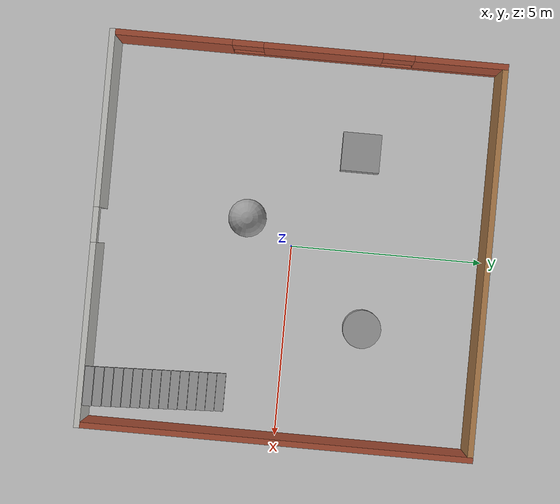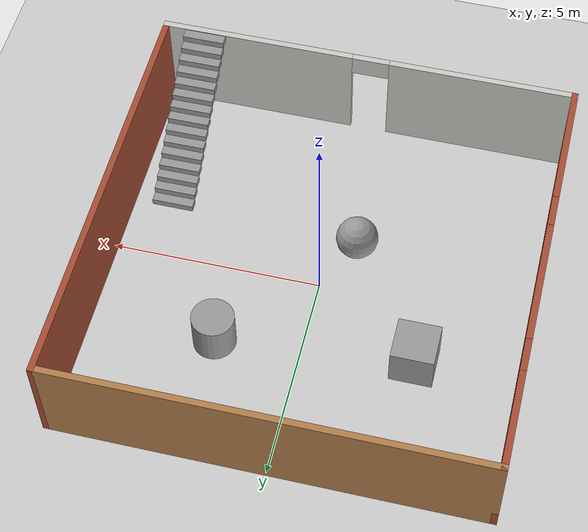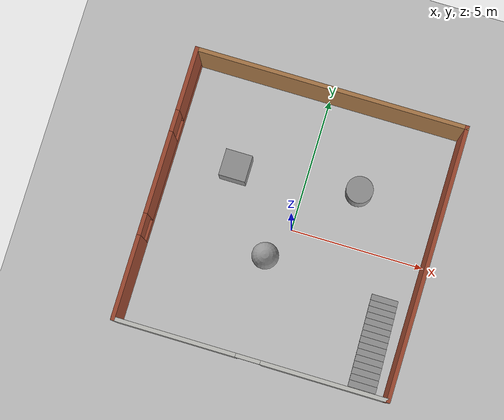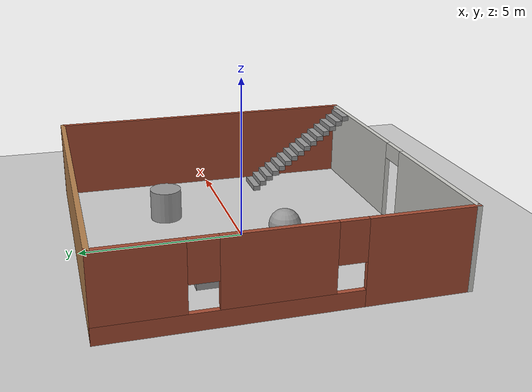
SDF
<sdf version="1.7">
 <world name="default">
  <light name="sun" type="directional">
   <pose>0 0 10 0 -0 0</pose>
   <diffuse>0.8 0.8 0.8 1</diffuse>
   <specular>0.2 0.2 0.2 1</specular>
   <attenuation>
    <range>1000</range>
    <constant>0.9</constant>
    <linear>0.01</linear>
    <quadratic>0.001</quadratic>
   </attenuation>
   <direction>-0.5 0.1 -0.9</direction>
   <spot><inner_angle>0</inner_angle><outer_angle>0</outer_angle><falloff>0</falloff></spot>
  </light>
  <model name="ground_plane">
   <static>1</static>
   <link name="link">
    <collision name="collision">
     <geometry><plane><normal>0 0 1</normal><size>100 100</size></plane></geometry>
     <surface>
      <contact><collide_bitmask>65535</collide_bitmask></contact>
      <friction><ode><mu>100</mu><mu2>50</mu2></ode></friction>
     </surface>
    </collision>
    <visual name="visual">
     <cast_shadows>0</cast_shadows>
     <geometry><plane><normal>0 0 1</normal><size>100 100</size></plane></geometry>
     <material>
      <script><uri>file://media/materials/scripts/gazebo.material</uri><name>Gazebo/Grey</name></script>
     </material>
    </visual>
   </link>
  </model>
  <gravity>0 0 -9.8</gravity>
  <magnetic_field>6e-06 2.3e-05 -4.2e-05</magnetic_field>
  <atmosphere type="adiabatic"/>
  <physics type="ode">
   <max_step_size>0.001</max_step_size>
   <real_time_factor>1</real_time_factor>
   <real_time_update_rate>1000</real_time_update_rate>
  </physics>
  <scene><ambient>0.4 0.4 0.4 1</ambient><background>0.7 0.7 0.7 1</background><shadows>1</shadows></scene>
  <spherical_coordinates>
   <surface_model>EARTH_WGS84</surface_model>
   <latitude_deg>0</latitude_deg>
   <longitude_deg>0</longitude_deg>
   <elevation>0</elevation>
   <heading_deg>0</heading_deg>
  </spherical_coordinates>
  <model name="house">
   <link name="Stairs_0">
    <visual name="Stairs_0_Visual_0">
     <pose>3.99723 -1.52724 0.083333 0 -0 0</pose>
     <geometry><box><size>1 0.233333 0.166667</size></box></geometry>
     <material>
      <script><uri>file://media/materials/scripts/gazebo.material</uri><name>Gazebo/Grey</name></script>
      <ambient>1 1 1 1</ambient>
     </material>
     <meta><layer>0</layer></meta>
    </visual>
    <collision name="Stairs_0_Collision_0">
     <geometry><box><size>1 0.233333 0.166667</size></box></geometry>
     <pose>3.99723 -1.52724 0.083333 0 -0 0</pose>
    </collision>
    <visual name="Stairs_0_Visual_1">
     <pose>3.99723 -1.76057 0.25 0 -0 0</pose>
     <geometry><box><size>1 0.233333 0.166667</size></box></geometry>
     <material>
      <script><uri>file://media/materials/scripts/gazebo.material</uri><name>Gazebo/Grey</name></script>
      <ambient>1 1 1 1</ambient>
     </material>
     <meta><layer>0</layer></meta>
    </visual>
    <collision name="Stairs_0_Collision_1">
     <geometry><box><size>1 0.233333 0.166667</size></box></geometry>
     <pose>3.99723 -1.76057 0.25 0 -0 0</pose>
    </collision>
    <visual name="Stairs_0_Visual_2">
     <pose>3.99723 -1.99391 0.416667 0 -0 0</pose>
     <geometry><box><size>1 0.233333 0.166667</size></box></geometry>
     <material>
      <script><uri>file://media/materials/scripts/gazebo.material</uri><name>Gazebo/Grey</name></script>
      <ambient>1 1 1 1</ambient>
     </material>
     <meta><layer>0</layer></meta>
    </visual>
    <collision name="Stairs_0_Collision_2">
     <geometry><box><size>1 0.233333 0.166667</size></box></geometry>
     <pose>3.99723 -1.99391 0.416667 0 -0 0</pose>
    </collision>
    <visual name="Stairs_0_Visual_3">
     <pose>3.99723 -2.22724 0.583333 0 -0 0</pose>
     <geometry><box><size>1 0.233333 0.166667</size></box></geometry>
     <material>
      <script><uri>file://media/materials/scripts/gazebo.material</uri><name>Gazebo/Grey</name></script>
      <ambient>1 1 1 1</ambient>
     </material>
     <meta><layer>0</layer></meta>
    </visual>
    <collision name="Stairs_0_Collision_3">
     <geometry><box><size>1 0.233333 0.166667</size></box></geometry>
     <pose>3.99723 -2.22724 0.583333 0 -0 0</pose>
    </collision>
    <visual name="Stairs_0_Visual_4">
     <pose>3.99723 -2.46057 0.75 0 -0 0</pose>
     <geometry><box><size>1 0.233333 0.166667</size></box></geometry>
     <material>
      <script><uri>file://media/materials/scripts/gazebo.material</uri><name>Gazebo/Grey</name></script>
      <ambient>1 1 1 1</ambient>
     </material>
     <meta><layer>0</layer></meta>
    </visual>
    <collision name="Stairs_0_Collision_4">
     <geometry><box><size>1 0.233333 0.166667</size></box></geometry>
     <pose>3.99723 -2.46057 0.75 0 -0 0</pose>
    </collision>
    <visual name="Stairs_0_Visual_5">
     <pose>3.99723 -2.69391 0.916667 0 -0 0</pose>
     <geometry><box><size>1 0.233333 0.166667</size></box></geometry>
     <material>
      <script><uri>file://media/materials/scripts/gazebo.material</uri><name>Gazebo/Grey</name></script>
      <ambient>1 1 1 1</ambient>
     </material>
     <meta><layer>0</layer></meta>
    </visual>
    <collision name="Stairs_0_Collision_5">
     <geometry><box><size>1 0.233333 0.166667</size></box></geometry>
     <pose>3.99723 -2.69391 0.916667 0 -0 0</pose>
    </collision>
    <visual name="Stairs_0_Visual_6">
     <pose>3.99723 -2.92724 1.08333 0 -0 0</pose>
     <geometry><box><size>1 0.233333 0.166667</size></box></geometry>
     <material>
      <script><uri>file://media/materials/scripts/gazebo.material</uri><name>Gazebo/Grey</name></script>
      <ambient>1 1 1 1</ambient>
     </material>
     <meta><layer>0</layer></meta>
    </visual>
    <collision name="Stairs_0_Collision_6">
     <geometry><box><size>1 0.233333 0.166667</size></box></geometry>
     <pose>3.99723 -2.92724 1.08333 0 -0 0</pose>
    </collision>
    <visual name="Stairs_0_Visual_7">
     <pose>3.99723 -3.16057 1.25 0 -0 0</pose>
     <geometry><box><size>1 0.233333 0.166667</size></box></geometry>
     <material>
      <script><uri>file://media/materials/scripts/gazebo.material</uri><name>Gazebo/Grey</name></script>
      <ambient>1 1 1 1</ambient>
     </material>
     <meta><layer>0</layer></meta>
    </visual>
    <collision name="Stairs_0_Collision_7">
     <geometry><box><size>1 0.233333 0.166667</size></box></geometry>
     <pose>3.99723 -3.16057 1.25 0 -0 0</pose>
    </collision>
    <visual name="Stairs_0_Visual_8">
     <pose>3.99723 -3.39391 1.41667 0 -0 0</pose>
     <geometry><box><size>1 0.233333 0.166667</size></box></geometry>
     <material>
      <script><uri>file://media/materials/scripts/gazebo.material</uri><name>Gazebo/Grey</name></script>
      <ambient>1 1 1 1</ambient>
     </material>
     <meta><layer>0</layer></meta>
    </visual>
    <collision name="Stairs_0_Collision_8">
     <geometry><box><size>1 0.233333 0.166667</size></box></geometry>
     <pose>3.99723 -3.39391 1.41667 0 -0 0</pose>
    </collision>
    <visual name="Stairs_0_Visual_9">
     <pose>3.99723 -3.62724 1.58333 0 -0 0</pose>
     <geometry><box><size>1 0.233333 0.166667</size></box></geometry>
     <material>
      <script><uri>file://media/materials/scripts/gazebo.material</uri><name>Gazebo/Grey</name></script>
      <ambient>1 1 1 1</ambient>
     </material>
     <meta><layer>0</layer></meta>
    </visual>
    <collision name="Stairs_0_Collision_9">
     <geometry><box><size>1 0.233333 0.166667</size></box></geometry>
     <pose>3.99723 -3.62724 1.58333 0 -0 0</pose>
    </collision>
    <visual name="Stairs_0_Visual_10">
     <pose>3.99723 -3.86057 1.75 0 -0 0</pose>
     <geometry><box><size>1 0.233333 0.166667</size></box></geometry>
     <material>
      <script><uri>file://media/materials/scripts/gazebo.material</uri><name>Gazebo/Grey</name></script>
      <ambient>1 1 1 1</ambient>
     </material>
     <meta><layer>0</layer></meta>
    </visual>
    <collision name="Stairs_0_Collision_10">
     <geometry><box><size>1 0.233333 0.166667</size></box></geometry>
     <pose>3.99723 -3.86057 1.75 0 -0 0</pose>
    </collision>
    <visual name="Stairs_0_Visual_11">
     <pose>3.99723 -4.09391 1.91667 0 -0 0</pose>
     <geometry><box><size>1 0.233333 0.166667</size></box></geometry>
     <material>
      <script><uri>file://media/materials/scripts/gazebo.material</uri><name>Gazebo/Grey</name></script>
      <ambient>1 1 1 1</ambient>
     </material>
     <meta><layer>0</layer></meta>
    </visual>
    <collision name="Stairs_0_Collision_11">
     <geometry><box><size>1 0.233333 0.166667</size></box></geometry>
     <pose>3.99723 -4.09391 1.91667 0 -0 0</pose>
    </collision>
    <visual name="Stairs_0_Visual_12">
     <pose>3.99723 -4.32724 2.08333 0 -0 0</pose>
     <geometry><box><size>1 0.233333 0.166667</size></box></geometry>
     <material>
      <script><uri>file://media/materials/scripts/gazebo.material</uri><name>Gazebo/Grey</name></script>
      <ambient>1 1 1 1</ambient>
     </material>
     <meta><layer>0</layer></meta>
    </visual>
    <collision name="Stairs_0_Collision_12">
     <geometry><box><size>1 0.233333 0.166667</size></box></geometry>
     <pose>3.99723 -4.32724 2.08333 0 -0 0</pose>
    </collision>
    <visual name="Stairs_0_Visual_13">
     <pose>3.99723 -4.56057 2.25 0 -0 0</pose>
     <geometry><box><size>1 0.233333 0.166667</size></box></geometry>
     <material>
      <script><uri>file://media/materials/scripts/gazebo.material</uri><name>Gazebo/Grey</name></script>
      <ambient>1 1 1 1</ambient>
     </material>
     <meta><layer>0</layer></meta>
    </visual>
    <collision name="Stairs_0_Collision_13">
     <geometry><box><size>1 0.233333 0.166667</size></box></geometry>
     <pose>3.99723 -4.56057 2.25 0 -0 0</pose>
    </collision>
    <visual name="Stairs_0_Visual_14">
     <pose>3.99723 -4.79391 2.41667 0 -0 0</pose>
     <geometry><box><size>1 0.233333 0.166667</size></box></geometry>
     <material>
      <script><uri>file://media/materials/scripts/gazebo.material</uri><name>Gazebo/Grey</name></script>
      <ambient>1 1 1 1</ambient>
     </material>
     <meta><layer>0</layer></meta>
    </visual>
    <collision name="Stairs_0_Collision_14">
     <geometry><box><size>1 0.233333 0.166667</size></box></geometry>
     <pose>3.99723 -4.79391 2.41667 0 -0 0</pose>
    </collision>
   </link>
   <link name="Wall_2">
    <pose>0 -5 0 0 -0 0</pose>
    <visual name="Wall_2_Visual_0">
     <pose>-2.80719 0 1.25 0 -0 0</pose>
     <geometry><box><size>4.53562 0.15 2.5</size></box></geometry>
     <material>
      <script><uri>file://media/materials/scripts/gazebo.material</uri><name>Gazebo/CeilingTiled</name></script>
      <ambient>1 1 1 1</ambient>
     </material>
     <meta><layer>0</layer></meta>
    </visual>
    <collision name="Wall_2_Collision_0">
     <geometry><box><size>4.53562 0.15 2.5</size></box></geometry>
     <pose>-2.80719 0 1.25 0 -0 0</pose>
    </collision>
    <visual name="Wall_2_Visual_1">
     <pose>2.71781 0 1.25 0 -0 0</pose>
     <geometry><box><size>4.71438 0.15 2.5</size></box></geometry>
     <material>
      <script><uri>file://media/materials/scripts/gazebo.material</uri><name>Gazebo/CeilingTiled</name></script>
      <ambient>1 1 1 1</ambient>
     </material>
     <meta><layer>0</layer></meta>
    </visual>
    <collision name="Wall_2_Collision_1">
     <geometry><box><size>4.71438 0.15 2.5</size></box></geometry>
     <pose>2.71781 0 1.25 0 -0 0</pose>
    </collision>
    <visual name="Wall_2_Visual_2">
     <pose>-0.089384 0 2.25 0 -0 0</pose>
     <geometry><box><size>0.9 0.15 0.5</size></box></geometry>
     <material>
      <script><uri>file://media/materials/scripts/gazebo.material</uri><name>Gazebo/CeilingTiled</name></script>
      <ambient>1 1 1 1</ambient>
     </material>
     <meta><layer>0</layer></meta>
    </visual>
    <collision name="Wall_2_Collision_2">
     <geometry><box><size>0.9 0.15 0.5</size></box></geometry>
     <pose>-0.089384 0 2.25 0 -0 0</pose>
    </collision>
   </link>
   <link name="Wall_5">
    <collision name="Wall_5_Collision">
     <geometry><box><size>10.15 0.15 2.5</size></box></geometry>
     <pose>0 0 1.25 0 -0 0</pose>
    </collision>
    <visual name="Wall_5_Visual">
     <pose>0 0 1.25 0 -0 0</pose>
     <geometry><box><size>10.15 0.15 2.5</size></box></geometry>
     <material>
      <script><uri>file://media/materials/scripts/gazebo.material</uri><name>Gazebo/Bricks</name></script>
      <ambient>1 1 1 1</ambient>
     </material>
     <meta><layer>0</layer></meta>
    </visual>
    <pose>5 0 0 0 -0 1.5708</pose>
   </link>
   <link name="Wall_7">
    <pose>-5 0 0 0 -0 1.5708</pose>
    <visual name="Wall_7_Visual_0">
     <pose>-3.51324 0 1.25 0 -0 0</pose>
     <geometry><box><size>3.12351 0.15 2.5</size></box></geometry>
     <material>
      <script><uri>file://media/materials/scripts/gazebo.material</uri><name>Gazebo/Bricks</name></script>
      <ambient>1 1 1 1</ambient>
     </material>
     <meta><layer>0</layer></meta>
    </visual>
    <collision name="Wall_7_Collision_0">
     <geometry><box><size>3.12351 0.15 2.5</size></box></geometry>
     <pose>-3.51324 0 1.25 0 -0 0</pose>
    </collision>
    <visual name="Wall_7_Visual_1">
     <pose>1.56176 0 0.25 0 -0 0</pose>
     <geometry><box><size>7.02649 0.15 0.5</size></box></geometry>
     <material>
      <script><uri>file://media/materials/scripts/gazebo.material</uri><name>Gazebo/Bricks</name></script>
      <ambient>1 1 1 1</ambient>
     </material>
     <meta><layer>0</layer></meta>
    </visual>
    <collision name="Wall_7_Collision_1">
     <geometry><box><size>7.02649 0.15 0.5</size></box></geometry>
     <pose>1.56176 0 0.25 0 -0 0</pose>
    </collision>
    <visual name="Wall_7_Visual_2">
     <pose>0.369359 0 1.5 0 -0 0</pose>
     <geometry><box><size>3.04169 0.15 2</size></box></geometry>
     <material>
      <script><uri>file://media/materials/scripts/gazebo.material</uri><name>Gazebo/Bricks</name></script>
      <ambient>1 1 1 1</ambient>
     </material>
     <meta><layer>0</layer></meta>
    </visual>
    <collision name="Wall_7_Collision_2">
     <geometry><box><size>3.04169 0.15 2</size></box></geometry>
     <pose>0.369359 0 1.5 0 -0 0</pose>
    </collision>
    <visual name="Wall_7_Visual_3">
     <pose>3.8826 0 1.5 0 -0 0</pose>
     <geometry><box><size>2.38479 0.15 2</size></box></geometry>
     <material>
      <script><uri>file://media/materials/scripts/gazebo.material</uri><name>Gazebo/Bricks</name></script>
      <ambient>1 1 1 1</ambient>
     </material>
     <meta><layer>0</layer></meta>
    </visual>
    <collision name="Wall_7_Collision_3">
     <geometry><box><size>2.38479 0.15 2</size></box></geometry>
     <pose>3.8826 0 1.5 0 -0 0</pose>
    </collision>
    <visual name="Wall_7_Visual_4">
     <pose>-1.55149 0 1.9 0 -0 0</pose>
     <geometry><box><size>0.8 0.15 1.2</size></box></geometry>
     <material>
      <script><uri>file://media/materials/scripts/gazebo.material</uri><name>Gazebo/Bricks</name></script>
      <ambient>1 1 1 1</ambient>
     </material>
     <meta><layer>0</layer></meta>
    </visual>
    <collision name="Wall_7_Collision_4">
     <geometry><box><size>0.8 0.15 1.2</size></box></geometry>
     <pose>-1.55149 0 1.9 0 -0 0</pose>
    </collision>
    <visual name="Wall_7_Visual_5">
     <pose>2.2902 0 1.9 0 -0 0</pose>
     <geometry><box><size>0.8 0.15 1.2</size></box></geometry>
     <material>
      <script><uri>file://media/materials/scripts/gazebo.material</uri><name>Gazebo/Bricks</name></script>
      <ambient>1 1 1 1</ambient>
     </material>
     <meta><layer>0</layer></meta>
    </visual>
    <collision name="Wall_7_Collision_5">
     <geometry><box><size>0.8 0.15 1.2</size></box></geometry>
     <pose>2.2902 0 1.9 0 -0 0</pose>
    </collision>
   </link>
   <link name="Wall_8">
    <collision name="Wall_8_Collision">
     <geometry><box><size>10.15 0.15 2.5</size></box></geometry>
     <pose>0 0 1.25 0 -0 0</pose>
    </collision>
    <visual name="Wall_8_Visual">
     <pose>0 0 1.25 0 -0 0</pose>
     <geometry><box><size>10.15 0.15 2.5</size></box></geometry>
     <material>
      <script><uri>file://media/materials/scripts/gazebo.material</uri><name>Gazebo/Wood</name></script>
      <ambient>1 1 1 1</ambient>
     </material>
     <meta><layer>0</layer></meta>
    </visual>
    <pose>0 5 0 0 -0 0</pose>
   </link>
   <static>1</static>
  </model>
  <model name="unit_box">
   <pose>-2.58557 1.58777 0.499995 0 1e-05 0</pose>
   <link name="link">
    <inertial>
     <mass>1</mass>
     <inertia>
      <ixx>0.166667</ixx>
      <ixy>0</ixy>
      <ixz>0</ixz>
      <iyy>0.166667</iyy>
      <iyz>0</iyz>
      <izz>0.166667</izz>
     </inertia>
    </inertial>
    <collision name="collision"><geometry><box><size>1 1 1</size></box></geometry></collision>
    <visual name="visual">
     <geometry><box><size>1 1 1</size></box></geometry>
     <material>
      <script><name>Gazebo/Grey</name><uri>file://media/materials/scripts/gazebo.material</uri></script>
     </material>
    </visual>
   </link>
  </model>
  <model name="unit_cylinder">
   <pose>1.9865 2.01566 0.499997 3e-06 4e-06 -0</pose>
   <link name="link">
    <inertial>
     <mass>1</mass>
     <inertia><ixx>0.145833</ixx><ixy>0</ixy><ixz>0</ixz><iyy>0.145833</iyy><iyz>0</iyz><izz>0.125</izz></inertia>
    </inertial>
    <collision name="collision">
     <geometry><cylinder><radius>0.5</radius><length>1</length></cylinder></geometry>
    </collision>
    <visual name="visual">
     <geometry><cylinder><radius>0.5</radius><length>1</length></cylinder></geometry>
     <material>
      <script><name>Gazebo/Grey</name><uri>file://media/materials/scripts/gazebo.material</uri></script>
     </material>
    </visual>
   </link>
  </model>
  <model name="unit_sphere">
   <pose>-0.629735 -1.2145 0.5 0 -0 0</pose>
   <link name="link">
    <inertial>
     <mass>1</mass>
     <inertia><ixx>0.1</ixx><ixy>0</ixy><ixz>0</ixz><iyy>0.1</iyy><iyz>0</iyz><izz>0.1</izz></inertia>
    </inertial>
    <collision name="collision"><geometry><sphere><radius>0.5</radius></sphere></geometry></collision>
    <visual name="visual">
     <geometry><sphere><radius>0.5</radius></sphere></geometry>
     <material>
      <script><name>Gazebo/Grey</name><uri>file://media/materials/scripts/gazebo.material</uri></script>
     </material>
    </visual>
   </link>
  </model>
 </world>
</sdf>
